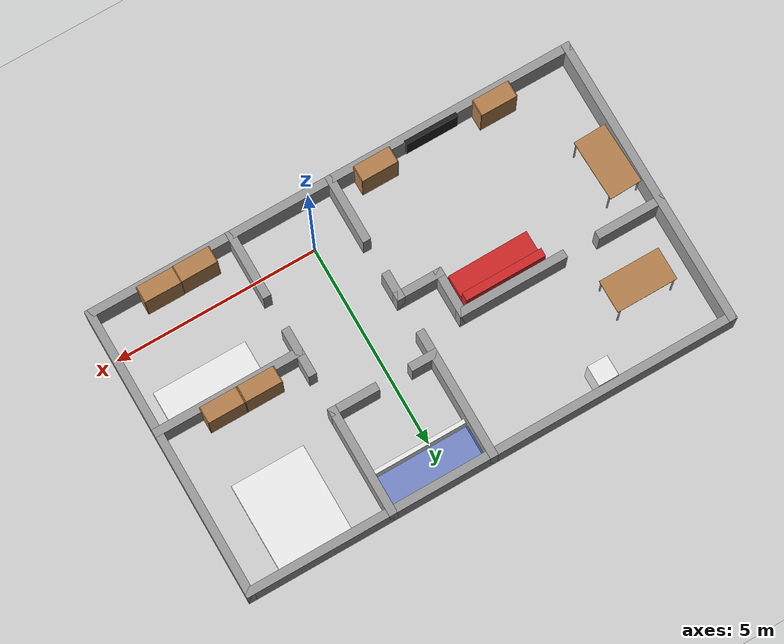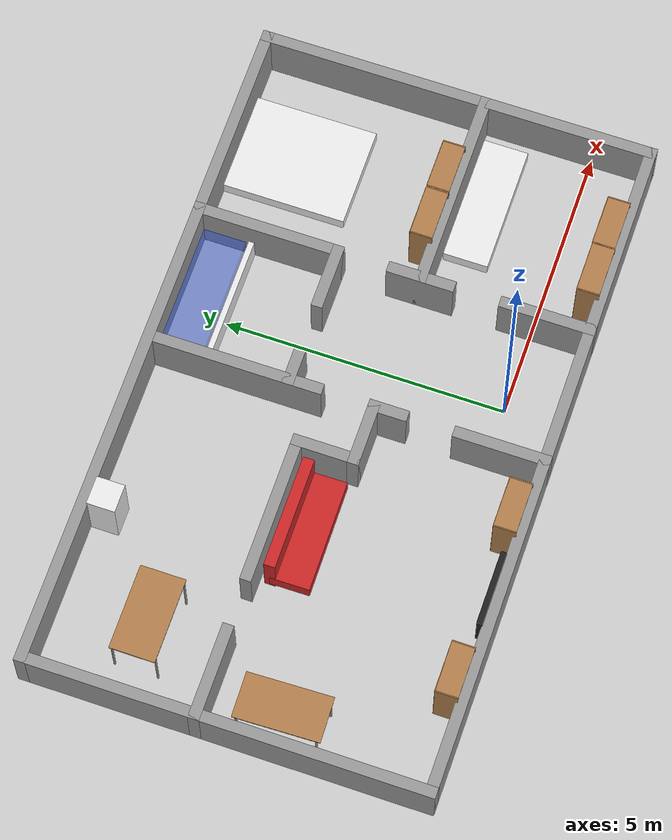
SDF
<sdf version="1.4">
 <world name="default">
  <light name="sun" type="directional">
   <pose>0 0 10 0 -0 0</pose>
   <diffuse>0.8 0.8 0.8 1</diffuse>
   <specular>0.2 0.2 0.2 1</specular>
   <attenuation>
    <range>1000</range>
    <constant>0.9</constant>
    <linear>0.01</linear>
    <quadratic>0.001</quadratic>
   </attenuation>
   <direction>-0.5 0.1 -0.9</direction>
  </light>
  <model name="ground_plane">
   <static>1</static>
   <link name="link">
    <collision name="collision">
     <geometry><plane><normal>0 0 1</normal><size>100 100</size></plane></geometry>
     <surface><friction><ode><mu>100</mu><mu2>50</mu2></ode></friction></surface>
    </collision>
    <visual name="visual">
     <cast_shadows>0</cast_shadows>
     <geometry><plane><normal>0 0 1</normal><size>100 100</size></plane></geometry>
     <material>
      <script><uri>file://media/materials/scripts/gazebo.material</uri><name>Gazebo/Grey</name></script>
     </material>
    </visual>
    <velocity_decay><linear>0</linear><angular>0</angular></velocity_decay>
   </link>
  </model>
  <physics type="ode">
   <max_step_size>0.01</max_step_size>
   <real_time_factor>1</real_time_factor>
   <real_time_update_rate>100</real_time_update_rate>
   <gravity>0 0 -9.8</gravity>
  </physics>
  <scene><ambient>0.4 0.4 0.4 1</ambient><background>0.7 0.7 0.7 1</background><shadows>1</shadows></scene>
  <spherical_coordinates>
   <surface_model>EARTH_WGS84</surface_model>
   <latitude_deg>0</latitude_deg>
   <longitude_deg>0</longitude_deg>
   <elevation>0</elevation>
   <heading_deg>0</heading_deg>
  </spherical_coordinates>
  <model name="BuildingDefaultName">
   <link name="Wall_27">
    <collision name="Wall_27_Collision">
     <geometry><box><size>12.2 0.2 1</size></box></geometry>
     <pose>0 0 0.5 0 -0 0</pose>
    </collision>
    <visual name="Wall_27_Visual">
     <pose>0 0 0.5 0 -0 0</pose>
     <geometry><box><size>12.2 0.2 1</size></box></geometry>
     <material>
      <script><uri>file://media/materials/scripts/gazebo.material</uri><name>Gazebo/Grey</name></script>
     </material>
    </visual>
    <velocity_decay><linear>0</linear><angular>0</angular></velocity_decay>
    <pose>-1 -1 0 0 -0 0</pose>
   </link>
   <link name="Wall_29">
    <collision name="Wall_29_Collision">
     <geometry><box><size>12.2 0.2 1</size></box></geometry>
     <pose>0 0 0.5 0 -0 0</pose>
    </collision>
    <visual name="Wall_29_Visual">
     <pose>0 0 0.5 0 -0 0</pose>
     <geometry><box><size>12.2 0.2 1</size></box></geometry>
     <material>
      <script><uri>file://media/materials/scripts/gazebo.material</uri><name>Gazebo/Grey</name></script>
     </material>
    </visual>
    <velocity_decay><linear>0</linear><angular>0</angular></velocity_decay>
    <pose>-1 6 0 0 -0 0</pose>
   </link>
   <link name="Wall_32">
    <collision name="Wall_32_Collision">
     <geometry><box><size>7.2 0.2 1</size></box></geometry>
     <pose>0 0 0.5 0 -0 0</pose>
    </collision>
    <visual name="Wall_32_Visual">
     <pose>0 0 0.5 0 -0 0</pose>
     <geometry><box><size>7.2 0.2 1</size></box></geometry>
     <material>
      <script><uri>file://media/materials/scripts/gazebo.material</uri><name>Gazebo/Grey</name></script>
     </material>
    </visual>
    <velocity_decay><linear>0</linear><angular>0</angular></velocity_decay>
    <pose>-7 2.5 0 0 0 -1.5708</pose>
   </link>
   <link name="Wall_35">
    <collision name="Wall_35_Collision">
     <geometry><box><size>7.2 0.2 1</size></box></geometry>
     <pose>0 0 0.5 0 -0 0</pose>
    </collision>
    <visual name="Wall_35_Visual">
     <pose>0 0 0.5 0 -0 0</pose>
     <geometry><box><size>7.2 0.2 1</size></box></geometry>
     <material>
      <script><uri>file://media/materials/scripts/gazebo.material</uri><name>Gazebo/Grey</name></script>
     </material>
    </visual>
    <velocity_decay><linear>0</linear><angular>0</angular></velocity_decay>
    <pose>5 2.5 0 0 0 -1.5708</pose>
   </link>
   <link name="Wall_37">
    <collision name="Wall_37_Collision">
     <geometry><box><size>1.7 0.2 1</size></box></geometry>
     <pose>0 0 0.5 0 -0 0</pose>
    </collision>
    <visual name="Wall_37_Visual">
     <pose>0 0 0.5 0 -0 0</pose>
     <geometry><box><size>1.7 0.2 1</size></box></geometry>
     <material>
      <script><uri>file://media/materials/scripts/gazebo.material</uri><name>Gazebo/Grey</name></script>
     </material>
    </visual>
    <velocity_decay><linear>0</linear><angular>0</angular></velocity_decay>
    <pose>-1 -0.25 0 0 -0 1.5708</pose>
   </link>
   <link name="Wall_39">
    <collision name="Wall_39_Collision">
     <geometry><box><size>1.7 0.2 1</size></box></geometry>
     <pose>0 0 0.5 0 -0 0</pose>
    </collision>
    <visual name="Wall_39_Visual">
     <pose>0 0 0.5 0 -0 0</pose>
     <geometry><box><size>1.7 0.2 1</size></box></geometry>
     <material>
      <script><uri>file://media/materials/scripts/gazebo.material</uri><name>Gazebo/Grey</name></script>
     </material>
    </visual>
    <velocity_decay><linear>0</linear><angular>0</angular></velocity_decay>
    <pose>1.5 -0.25 0 0 -0 1.5708</pose>
   </link>
   <link name="Wall_44">
    <collision name="Wall_44_Collision">
     <geometry><box><size>0.7 0.2 1</size></box></geometry>
     <pose>0 0 0.5 0 -0 0</pose>
    </collision>
    <visual name="Wall_44_Visual">
     <pose>0 0 0.5 0 -0 0</pose>
     <geometry><box><size>0.7 0.2 1</size></box></geometry>
     <material>
      <script><uri>file://media/materials/scripts/gazebo.material</uri><name>Gazebo/Grey</name></script>
     </material>
    </visual>
    <velocity_decay><linear>0</linear><angular>0</angular></velocity_decay>
    <pose>-1 1.75 0 0 -0 1.5708</pose>
   </link>
   <link name="Wall_46">
    <collision name="Wall_46_Collision">
     <geometry><box><size>1.2 0.2 1</size></box></geometry>
     <pose>0 0 0.5 0 -0 0</pose>
    </collision>
    <visual name="Wall_46_Visual">
     <pose>0 0 0.5 0 -0 0</pose>
     <geometry><box><size>1.2 0.2 1</size></box></geometry>
     <material>
      <script><uri>file://media/materials/scripts/gazebo.material</uri><name>Gazebo/Grey</name></script>
     </material>
    </visual>
    <velocity_decay><linear>0</linear><angular>0</angular></velocity_decay>
    <pose>-1.5 2 0 0 -0 0</pose>
   </link>
   <link name="Wall_48">
    <collision name="Wall_48_Collision">
     <geometry><box><size>1.2 0.2 1</size></box></geometry>
     <pose>0 0 0.5 0 -0 0</pose>
    </collision>
    <visual name="Wall_48_Visual">
     <pose>0 0 0.5 0 -0 0</pose>
     <geometry><box><size>1.2 0.2 1</size></box></geometry>
     <material>
      <script><uri>file://media/materials/scripts/gazebo.material</uri><name>Gazebo/Grey</name></script>
     </material>
    </visual>
    <velocity_decay><linear>0</linear><angular>0</angular></velocity_decay>
    <pose>-2 2.5 0 0 -0 1.5708</pose>
   </link>
   <link name="Wall_50">
    <collision name="Wall_50_Collision">
     <geometry><box><size>2.7 0.2 1</size></box></geometry>
     <pose>0 0 0.5 0 -0 0</pose>
    </collision>
    <visual name="Wall_50_Visual">
     <pose>0 0 0.5 0 -0 0</pose>
     <geometry><box><size>2.7 0.2 1</size></box></geometry>
     <material>
      <script><uri>file://media/materials/scripts/gazebo.material</uri><name>Gazebo/Grey</name></script>
     </material>
    </visual>
    <velocity_decay><linear>0</linear><angular>0</angular></velocity_decay>
    <pose>-3.25 3 0 0 -0 0</pose>
   </link>
   <link name="Wall_52">
    <collision name="Wall_52_Collision">
     <geometry><box><size>1.7 0.2 1</size></box></geometry>
     <pose>0 0 0.5 0 -0 0</pose>
    </collision>
    <visual name="Wall_52_Visual">
     <pose>0 0 0.5 0 -0 0</pose>
     <geometry><box><size>1.7 0.2 1</size></box></geometry>
     <material>
      <script><uri>file://media/materials/scripts/gazebo.material</uri><name>Gazebo/Grey</name></script>
     </material>
    </visual>
    <velocity_decay><linear>0</linear><angular>0</angular></velocity_decay>
    <pose>-6.25 3 0 0 -0 0</pose>
   </link>
   <link name="Wall_55">
    <collision name="Wall_55_Collision">
     <geometry><box><size>3.2 0.2 1</size></box></geometry>
     <pose>0 0 0.5 0 -0 0</pose>
    </collision>
    <visual name="Wall_55_Visual">
     <pose>0 0 0.5 0 -0 0</pose>
     <geometry><box><size>3.2 0.2 1</size></box></geometry>
     <material>
      <script><uri>file://media/materials/scripts/gazebo.material</uri><name>Gazebo/Grey</name></script>
     </material>
    </visual>
    <velocity_decay><linear>0</linear><angular>0</angular></velocity_decay>
    <pose>-1 4.5 0 0 0 -1.5708</pose>
   </link>
   <link name="Wall_57">
    <collision name="Wall_57_Collision">
     <geometry><box><size>3.7 0.2 1</size></box></geometry>
     <pose>0 0 0.5 0 -0 0</pose>
    </collision>
    <visual name="Wall_57_Visual">
     <pose>0 0 0.5 0 -0 0</pose>
     <geometry><box><size>3.7 0.2 1</size></box></geometry>
     <material>
      <script><uri>file://media/materials/scripts/gazebo.material</uri><name>Gazebo/Grey</name></script>
     </material>
    </visual>
    <velocity_decay><linear>0</linear><angular>0</angular></velocity_decay>
    <pose>3.25 2 0 0 -0 0</pose>
   </link>
   <link name="Wall_59">
    <collision name="Wall_59_Collision">
     <geometry><box><size>1.2 0.2 1</size></box></geometry>
     <pose>0 0 0.5 0 -0 0</pose>
    </collision>
    <visual name="Wall_59_Visual">
     <pose>0 0 0.5 0 -0 0</pose>
     <geometry><box><size>1.2 0.2 1</size></box></geometry>
     <material>
      <script><uri>file://media/materials/scripts/gazebo.material</uri><name>Gazebo/Grey</name></script>
     </material>
    </visual>
    <velocity_decay><linear>0</linear><angular>0</angular></velocity_decay>
    <pose>1.5 2 0 0 0 -1.5708</pose>
   </link>
   <link name="Wall_61">
    <collision name="Wall_61_Collision">
     <geometry><box><size>2.7 0.2 1</size></box></geometry>
     <pose>0 0 0.5 0 -0 0</pose>
    </collision>
    <visual name="Wall_61_Visual">
     <pose>0 0 0.5 0 -0 0</pose>
     <geometry><box><size>2.7 0.2 1</size></box></geometry>
     <material>
      <script><uri>file://media/materials/scripts/gazebo.material</uri><name>Gazebo/Grey</name></script>
     </material>
    </visual>
    <velocity_decay><linear>0</linear><angular>0</angular></velocity_decay>
    <pose>1.5 4.75 0 0 0 -1.5708</pose>
   </link>
   <link name="Wall_64">
    <collision name="Wall_64_Collision">
     <geometry><box><size>1.2 0.2 1</size></box></geometry>
     <pose>0 0 0.5 0 -0 0</pose>
    </collision>
    <visual name="Wall_64_Visual">
     <pose>0 0 0.5 0 -0 0</pose>
     <geometry><box><size>1.2 0.2 1</size></box></geometry>
     <material>
      <script><uri>file://media/materials/scripts/gazebo.material</uri><name>Gazebo/Grey</name></script>
     </material>
    </visual>
    <velocity_decay><linear>0</linear><angular>0</angular></velocity_decay>
    <pose>1 3.5 0 0 -0 0</pose>
   </link>
   <link name="Wall_66">
    <collision name="Wall_66_Collision">
     <geometry><box><size>0.7 0.2 1</size></box></geometry>
     <pose>0 0 0.5 0 -0 0</pose>
    </collision>
    <visual name="Wall_66_Visual">
     <pose>0 0 0.5 0 -0 0</pose>
     <geometry><box><size>0.7 0.2 1</size></box></geometry>
     <material>
      <script><uri>file://media/materials/scripts/gazebo.material</uri><name>Gazebo/Grey</name></script>
     </material>
    </visual>
    <velocity_decay><linear>0</linear><angular>0</angular></velocity_decay>
    <pose>-0.75 3.5 0 0 -0 0</pose>
   </link>
   <static>1</static>
  </model>
  <model name="table">
   <static>1</static>
   <link name="link">
    <collision name="surface">
     <pose>0 0 1 0 -0 0</pose>
     <geometry><box><size>1.5 0.8 0.03</size></box></geometry>
     <surface><friction><ode><mu>0.6</mu><mu2>0.6</mu2></ode></friction></surface>
    </collision>
    <visual name="visual1">
     <pose>0 0 1 0 -0 0</pose>
     <geometry><box><size>1.5 0.8 0.03</size></box></geometry>
     <material>
      <script><uri>file://media/materials/scripts/gazebo.material</uri><name>Gazebo/Wood</name></script>
     </material>
    </visual>
    <collision name="front_left_leg">
     <pose>0.68 0.38 0.5 0 -0 0</pose>
     <geometry><cylinder><radius>0.02</radius><length>1</length></cylinder></geometry>
    </collision>
    <visual name="front_left_leg">
     <pose>0.68 0.38 0.5 0 -0 0</pose>
     <geometry><cylinder><radius>0.02</radius><length>1</length></cylinder></geometry>
     <material>
      <script><uri>file://media/materials/scripts/gazebo.material</uri><name>Gazebo/Grey</name></script>
     </material>
    </visual>
    <collision name="front_right_leg">
     <pose>0.68 -0.38 0.5 0 -0 0</pose>
     <geometry><cylinder><radius>0.02</radius><length>1</length></cylinder></geometry>
    </collision>
    <visual name="front_right_leg">
     <pose>0.68 -0.38 0.5 0 -0 0</pose>
     <geometry><cylinder><radius>0.02</radius><length>1</length></cylinder></geometry>
     <material>
      <script><uri>file://media/materials/scripts/gazebo.material</uri><name>Gazebo/Grey</name></script>
     </material>
    </visual>
    <collision name="back_right_leg">
     <pose>-0.68 -0.38 0.5 0 -0 0</pose>
     <geometry><cylinder><radius>0.02</radius><length>1</length></cylinder></geometry>
    </collision>
    <visual name="back_right_leg">
     <pose>-0.68 -0.38 0.5 0 -0 0</pose>
     <geometry><cylinder><radius>0.02</radius><length>1</length></cylinder></geometry>
     <material>
      <script><uri>file://media/materials/scripts/gazebo.material</uri><name>Gazebo/Grey</name></script>
     </material>
    </visual>
    <collision name="back_left_leg">
     <pose>-0.68 0.38 0.5 0 -0 0</pose>
     <geometry><cylinder><radius>0.02</radius><length>1</length></cylinder></geometry>
    </collision>
    <visual name="back_left_leg">
     <pose>-0.68 0.38 0.5 0 -0 0</pose>
     <geometry><cylinder><radius>0.02</radius><length>1</length></cylinder></geometry>
     <material>
      <script><uri>file://media/materials/scripts/gazebo.material</uri><name>Gazebo/Grey</name></script>
     </material>
    </visual>
    <velocity_decay><linear>0</linear><angular>0</angular></velocity_decay>
   </link>
   <pose>-6.44255 1.69471 0 0 0 -1.53932</pose>
  </model>
  <model name="table_0">
   <static>1</static>
   <link name="link">
    <collision name="surface">
     <pose>0 0 1 0 -0 0</pose>
     <geometry><box><size>1.5 0.8 0.03</size></box></geometry>
     <surface><friction><ode><mu>0.6</mu><mu2>0.6</mu2></ode></friction></surface>
    </collision>
    <visual name="visual1">
     <pose>0 0 1 0 -0 0</pose>
     <geometry><box><size>1.5 0.8 0.03</size></box></geometry>
     <material>
      <script><uri>file://media/materials/scripts/gazebo.material</uri><name>Gazebo/Wood</name></script>
     </material>
    </visual>
    <collision name="front_left_leg">
     <pose>0.68 0.38 0.5 0 -0 0</pose>
     <geometry><cylinder><radius>0.02</radius><length>1</length></cylinder></geometry>
    </collision>
    <visual name="front_left_leg">
     <pose>0.68 0.38 0.5 0 -0 0</pose>
     <geometry><cylinder><radius>0.02</radius><length>1</length></cylinder></geometry>
     <material>
      <script><uri>file://media/materials/scripts/gazebo.material</uri><name>Gazebo/Grey</name></script>
     </material>
    </visual>
    <collision name="front_right_leg">
     <pose>0.68 -0.38 0.5 0 -0 0</pose>
     <geometry><cylinder><radius>0.02</radius><length>1</length></cylinder></geometry>
    </collision>
    <visual name="front_right_leg">
     <pose>0.68 -0.38 0.5 0 -0 0</pose>
     <geometry><cylinder><radius>0.02</radius><length>1</length></cylinder></geometry>
     <material>
      <script><uri>file://media/materials/scripts/gazebo.material</uri><name>Gazebo/Grey</name></script>
     </material>
    </visual>
    <collision name="back_right_leg">
     <pose>-0.68 -0.38 0.5 0 -0 0</pose>
     <geometry><cylinder><radius>0.02</radius><length>1</length></cylinder></geometry>
    </collision>
    <visual name="back_right_leg">
     <pose>-0.68 -0.38 0.5 0 -0 0</pose>
     <geometry><cylinder><radius>0.02</radius><length>1</length></cylinder></geometry>
     <material>
      <script><uri>file://media/materials/scripts/gazebo.material</uri><name>Gazebo/Grey</name></script>
     </material>
    </visual>
    <collision name="back_left_leg">
     <pose>-0.68 0.38 0.5 0 -0 0</pose>
     <geometry><cylinder><radius>0.02</radius><length>1</length></cylinder></geometry>
    </collision>
    <visual name="back_left_leg">
     <pose>-0.68 0.38 0.5 0 -0 0</pose>
     <geometry><cylinder><radius>0.02</radius><length>1</length></cylinder></geometry>
     <material>
      <script><uri>file://media/materials/scripts/gazebo.material</uri><name>Gazebo/Grey</name></script>
     </material>
    </visual>
    <velocity_decay><linear>0</linear><angular>0</angular></velocity_decay>
   </link>
   <pose>-5.66051 4.30495 0 0 -0 0</pose>
  </model>
  <model name="bookshelf_1">
   <static>1</static>
   <link name="link">
    <inertial><mass>1</mass></inertial>
    <collision name="back">
     <pose>0 0.005 0.6 0 -0 0</pose>
     <geometry><box><size>0.9 0.01 1.2</size></box></geometry>
    </collision>
    <visual name="visual1">
     <pose>0 0.005 0.6 0 -0 0</pose>
     <geometry><box><size>0.9 0.01 1.2</size></box></geometry>
     <material>
      <script><uri>file://media/materials/scripts/gazebo.material</uri><name>Gazebo/Wood</name></script>
     </material>
    </visual>
    <collision name="left_side">
     <pose>0.45 -0.195 0.6 0 -0 0</pose>
     <geometry><box><size>0.02 0.4 1.2</size></box></geometry>
    </collision>
    <visual name="visual2">
     <pose>0.45 -0.195 0.6 0 -0 0</pose>
     <geometry><box><size>0.02 0.4 1.2</size></box></geometry>
     <material>
      <script><uri>file://media/materials/scripts/gazebo.material</uri><name>Gazebo/Wood</name></script>
     </material>
    </visual>
    <collision name="right_side">
     <pose>-0.45 -0.195 0.6 0 -0 0</pose>
     <geometry><box><size>0.02 0.4 1.2</size></box></geometry>
    </collision>
    <visual name="visual3">
     <pose>-0.45 -0.195 0.6 0 -0 0</pose>
     <geometry><box><size>0.02 0.4 1.2</size></box></geometry>
     <material>
      <script><uri>file://media/materials/scripts/gazebo.material</uri><name>Gazebo/Wood</name></script>
     </material>
    </visual>
    <collision name="bottom">
     <pose>0 -0.195 0.03 0 -0 0</pose>
     <geometry><box><size>0.88 0.4 0.06</size></box></geometry>
    </collision>
    <visual name="visual4">
     <pose>0 -0.195 0.03 0 -0 0</pose>
     <geometry><box><size>0.88 0.4 0.06</size></box></geometry>
     <material>
      <script><uri>file://media/materials/scripts/gazebo.material</uri><name>Gazebo/Wood</name></script>
     </material>
    </visual>
    <collision name="top">
     <pose>0 -0.195 1.19 0 -0 0</pose>
     <geometry><box><size>0.88 0.4 0.02</size></box></geometry>
    </collision>
    <visual name="visual5">
     <pose>0 -0.195 1.19 0 -0 0</pose>
     <geometry><box><size>0.88 0.4 0.02</size></box></geometry>
     <material>
      <script><uri>file://media/materials/scripts/gazebo.material</uri><name>Gazebo/Wood</name></script>
     </material>
    </visual>
    <collision name="low_shelf">
     <pose>0 -0.195 0.43 0 -0 0</pose>
     <geometry><box><size>0.88 0.4 0.02</size></box></geometry>
    </collision>
    <visual name="visual6">
     <pose>0 -0.195 0.43 0 -0 0</pose>
     <geometry><box><size>0.88 0.4 0.02</size></box></geometry>
     <material>
      <script><uri>file://media/materials/scripts/gazebo.material</uri><name>Gazebo/Wood</name></script>
     </material>
    </visual>
    <collision name="high_shelf">
     <pose>0 -0.195 0.8 0 -0 0</pose>
     <geometry><box><size>0.88 0.4 0.02</size></box></geometry>
    </collision>
    <visual name="visual7">
     <pose>0 -0.195 0.8 0 -0 0</pose>
     <geometry><box><size>0.88 0.4 0.02</size></box></geometry>
     <material>
      <script><uri>file://media/materials/scripts/gazebo.material</uri><name>Gazebo/Wood</name></script>
     </material>
    </visual>
    <velocity_decay><linear>0</linear><angular>0</angular></velocity_decay>
   </link>
   <pose>-2 -0.560335 0 0 -0 0</pose>
  </model>
  <model name="bookshelf_3">
   <static>1</static>
   <link name="link">
    <inertial><mass>1</mass></inertial>
    <collision name="back">
     <pose>0 0.005 0.6 0 -0 0</pose>
     <geometry><box><size>0.9 0.01 1.2</size></box></geometry>
    </collision>
    <visual name="visual1">
     <pose>0 0.005 0.6 0 -0 0</pose>
     <geometry><box><size>0.9 0.01 1.2</size></box></geometry>
     <material>
      <script><uri>file://media/materials/scripts/gazebo.material</uri><name>Gazebo/Wood</name></script>
     </material>
    </visual>
    <collision name="left_side">
     <pose>0.45 -0.195 0.6 0 -0 0</pose>
     <geometry><box><size>0.02 0.4 1.2</size></box></geometry>
    </collision>
    <visual name="visual2">
     <pose>0.45 -0.195 0.6 0 -0 0</pose>
     <geometry><box><size>0.02 0.4 1.2</size></box></geometry>
     <material>
      <script><uri>file://media/materials/scripts/gazebo.material</uri><name>Gazebo/Wood</name></script>
     </material>
    </visual>
    <collision name="right_side">
     <pose>-0.45 -0.195 0.6 0 -0 0</pose>
     <geometry><box><size>0.02 0.4 1.2</size></box></geometry>
    </collision>
    <visual name="visual3">
     <pose>-0.45 -0.195 0.6 0 -0 0</pose>
     <geometry><box><size>0.02 0.4 1.2</size></box></geometry>
     <material>
      <script><uri>file://media/materials/scripts/gazebo.material</uri><name>Gazebo/Wood</name></script>
     </material>
    </visual>
    <collision name="bottom">
     <pose>0 -0.195 0.03 0 -0 0</pose>
     <geometry><box><size>0.88 0.4 0.06</size></box></geometry>
    </collision>
    <visual name="visual4">
     <pose>0 -0.195 0.03 0 -0 0</pose>
     <geometry><box><size>0.88 0.4 0.06</size></box></geometry>
     <material>
      <script><uri>file://media/materials/scripts/gazebo.material</uri><name>Gazebo/Wood</name></script>
     </material>
    </visual>
    <collision name="top">
     <pose>0 -0.195 1.19 0 -0 0</pose>
     <geometry><box><size>0.88 0.4 0.02</size></box></geometry>
    </collision>
    <visual name="visual5">
     <pose>0 -0.195 1.19 0 -0 0</pose>
     <geometry><box><size>0.88 0.4 0.02</size></box></geometry>
     <material>
      <script><uri>file://media/materials/scripts/gazebo.material</uri><name>Gazebo/Wood</name></script>
     </material>
    </visual>
    <collision name="low_shelf">
     <pose>0 -0.195 0.43 0 -0 0</pose>
     <geometry><box><size>0.88 0.4 0.02</size></box></geometry>
    </collision>
    <visual name="visual6">
     <pose>0 -0.195 0.43 0 -0 0</pose>
     <geometry><box><size>0.88 0.4 0.02</size></box></geometry>
     <material>
      <script><uri>file://media/materials/scripts/gazebo.material</uri><name>Gazebo/Wood</name></script>
     </material>
    </visual>
    <collision name="high_shelf">
     <pose>0 -0.195 0.8 0 -0 0</pose>
     <geometry><box><size>0.88 0.4 0.02</size></box></geometry>
    </collision>
    <visual name="visual7">
     <pose>0 -0.195 0.8 0 -0 0</pose>
     <geometry><box><size>0.88 0.4 0.02</size></box></geometry>
     <material>
      <script><uri>file://media/materials/scripts/gazebo.material</uri><name>Gazebo/Wood</name></script>
     </material>
    </visual>
    <velocity_decay><linear>0</linear><angular>0</angular></velocity_decay>
   </link>
   <pose>-5 -0.544478 0 0 -0 0</pose>
  </model>
  <model name="bookshelf_4">
   <static>1</static>
   <link name="link">
    <inertial><mass>1</mass></inertial>
    <collision name="back">
     <pose>0 0.005 0.6 0 -0 0</pose>
     <geometry><box><size>0.9 0.01 1.2</size></box></geometry>
    </collision>
    <visual name="visual1">
     <pose>0 0.005 0.6 0 -0 0</pose>
     <geometry><box><size>0.9 0.01 1.2</size></box></geometry>
     <material>
      <script><uri>file://media/materials/scripts/gazebo.material</uri><name>Gazebo/Wood</name></script>
     </material>
    </visual>
    <collision name="left_side">
     <pose>0.45 -0.195 0.6 0 -0 0</pose>
     <geometry><box><size>0.02 0.4 1.2</size></box></geometry>
    </collision>
    <visual name="visual2">
     <pose>0.45 -0.195 0.6 0 -0 0</pose>
     <geometry><box><size>0.02 0.4 1.2</size></box></geometry>
     <material>
      <script><uri>file://media/materials/scripts/gazebo.material</uri><name>Gazebo/Wood</name></script>
     </material>
    </visual>
    <collision name="right_side">
     <pose>-0.45 -0.195 0.6 0 -0 0</pose>
     <geometry><box><size>0.02 0.4 1.2</size></box></geometry>
    </collision>
    <visual name="visual3">
     <pose>-0.45 -0.195 0.6 0 -0 0</pose>
     <geometry><box><size>0.02 0.4 1.2</size></box></geometry>
     <material>
      <script><uri>file://media/materials/scripts/gazebo.material</uri><name>Gazebo/Wood</name></script>
     </material>
    </visual>
    <collision name="bottom">
     <pose>0 -0.195 0.03 0 -0 0</pose>
     <geometry><box><size>0.88 0.4 0.06</size></box></geometry>
    </collision>
    <visual name="visual4">
     <pose>0 -0.195 0.03 0 -0 0</pose>
     <geometry><box><size>0.88 0.4 0.06</size></box></geometry>
     <material>
      <script><uri>file://media/materials/scripts/gazebo.material</uri><name>Gazebo/Wood</name></script>
     </material>
    </visual>
    <collision name="top">
     <pose>0 -0.195 1.19 0 -0 0</pose>
     <geometry><box><size>0.88 0.4 0.02</size></box></geometry>
    </collision>
    <visual name="visual5">
     <pose>0 -0.195 1.19 0 -0 0</pose>
     <geometry><box><size>0.88 0.4 0.02</size></box></geometry>
     <material>
      <script><uri>file://media/materials/scripts/gazebo.material</uri><name>Gazebo/Wood</name></script>
     </material>
    </visual>
    <collision name="low_shelf">
     <pose>0 -0.195 0.43 0 -0 0</pose>
     <geometry><box><size>0.88 0.4 0.02</size></box></geometry>
    </collision>
    <visual name="visual6">
     <pose>0 -0.195 0.43 0 -0 0</pose>
     <geometry><box><size>0.88 0.4 0.02</size></box></geometry>
     <material>
      <script><uri>file://media/materials/scripts/gazebo.material</uri><name>Gazebo/Wood</name></script>
     </material>
    </visual>
    <collision name="high_shelf">
     <pose>0 -0.195 0.8 0 -0 0</pose>
     <geometry><box><size>0.88 0.4 0.02</size></box></geometry>
    </collision>
    <visual name="visual7">
     <pose>0 -0.195 0.8 0 -0 0</pose>
     <geometry><box><size>0.88 0.4 0.02</size></box></geometry>
     <material>
      <script><uri>file://media/materials/scripts/gazebo.material</uri><name>Gazebo/Wood</name></script>
     </material>
    </visual>
    <velocity_decay><linear>0</linear><angular>0</angular></velocity_decay>
   </link>
   <pose>2.50793 -0.579635 0 0 -0 0</pose>
  </model>
  <model name="bookshelf_5">
   <static>1</static>
   <link name="link">
    <inertial><mass>1</mass></inertial>
    <collision name="back">
     <pose>0 0.005 0.6 0 -0 0</pose>
     <geometry><box><size>0.9 0.01 1.2</size></box></geometry>
    </collision>
    <visual name="visual1">
     <pose>0 0.005 0.6 0 -0 0</pose>
     <geometry><box><size>0.9 0.01 1.2</size></box></geometry>
     <material>
      <script><uri>file://media/materials/scripts/gazebo.material</uri><name>Gazebo/Wood</name></script>
     </material>
    </visual>
    <collision name="left_side">
     <pose>0.45 -0.195 0.6 0 -0 0</pose>
     <geometry><box><size>0.02 0.4 1.2</size></box></geometry>
    </collision>
    <visual name="visual2">
     <pose>0.45 -0.195 0.6 0 -0 0</pose>
     <geometry><box><size>0.02 0.4 1.2</size></box></geometry>
     <material>
      <script><uri>file://media/materials/scripts/gazebo.material</uri><name>Gazebo/Wood</name></script>
     </material>
    </visual>
    <collision name="right_side">
     <pose>-0.45 -0.195 0.6 0 -0 0</pose>
     <geometry><box><size>0.02 0.4 1.2</size></box></geometry>
    </collision>
    <visual name="visual3">
     <pose>-0.45 -0.195 0.6 0 -0 0</pose>
     <geometry><box><size>0.02 0.4 1.2</size></box></geometry>
     <material>
      <script><uri>file://media/materials/scripts/gazebo.material</uri><name>Gazebo/Wood</name></script>
     </material>
    </visual>
    <collision name="bottom">
     <pose>0 -0.195 0.03 0 -0 0</pose>
     <geometry><box><size>0.88 0.4 0.06</size></box></geometry>
    </collision>
    <visual name="visual4">
     <pose>0 -0.195 0.03 0 -0 0</pose>
     <geometry><box><size>0.88 0.4 0.06</size></box></geometry>
     <material>
      <script><uri>file://media/materials/scripts/gazebo.material</uri><name>Gazebo/Wood</name></script>
     </material>
    </visual>
    <collision name="top">
     <pose>0 -0.195 1.19 0 -0 0</pose>
     <geometry><box><size>0.88 0.4 0.02</size></box></geometry>
    </collision>
    <visual name="visual5">
     <pose>0 -0.195 1.19 0 -0 0</pose>
     <geometry><box><size>0.88 0.4 0.02</size></box></geometry>
     <material>
      <script><uri>file://media/materials/scripts/gazebo.material</uri><name>Gazebo/Wood</name></script>
     </material>
    </visual>
    <collision name="low_shelf">
     <pose>0 -0.195 0.43 0 -0 0</pose>
     <geometry><box><size>0.88 0.4 0.02</size></box></geometry>
    </collision>
    <visual name="visual6">
     <pose>0 -0.195 0.43 0 -0 0</pose>
     <geometry><box><size>0.88 0.4 0.02</size></box></geometry>
     <material>
      <script><uri>file://media/materials/scripts/gazebo.material</uri><name>Gazebo/Wood</name></script>
     </material>
    </visual>
    <collision name="high_shelf">
     <pose>0 -0.195 0.8 0 -0 0</pose>
     <geometry><box><size>0.88 0.4 0.02</size></box></geometry>
    </collision>
    <visual name="visual7">
     <pose>0 -0.195 0.8 0 -0 0</pose>
     <geometry><box><size>0.88 0.4 0.02</size></box></geometry>
     <material>
      <script><uri>file://media/materials/scripts/gazebo.material</uri><name>Gazebo/Wood</name></script>
     </material>
    </visual>
    <velocity_decay><linear>0</linear><angular>0</angular></velocity_decay>
   </link>
   <pose>3.41344 -0.572419 0 0 -0 0</pose>
  </model>
  <model name="bookshelf_6">
   <static>1</static>
   <link name="link">
    <inertial><mass>1</mass></inertial>
    <collision name="back">
     <pose>0 0.005 0.6 0 -0 0</pose>
     <geometry><box><size>0.9 0.01 1.2</size></box></geometry>
    </collision>
    <visual name="visual1">
     <pose>0 0.005 0.6 0 -0 0</pose>
     <geometry><box><size>0.9 0.01 1.2</size></box></geometry>
     <material>
      <script><uri>file://media/materials/scripts/gazebo.material</uri><name>Gazebo/Wood</name></script>
     </material>
    </visual>
    <collision name="left_side">
     <pose>0.45 -0.195 0.6 0 -0 0</pose>
     <geometry><box><size>0.02 0.4 1.2</size></box></geometry>
    </collision>
    <visual name="visual2">
     <pose>0.45 -0.195 0.6 0 -0 0</pose>
     <geometry><box><size>0.02 0.4 1.2</size></box></geometry>
     <material>
      <script><uri>file://media/materials/scripts/gazebo.material</uri><name>Gazebo/Wood</name></script>
     </material>
    </visual>
    <collision name="right_side">
     <pose>-0.45 -0.195 0.6 0 -0 0</pose>
     <geometry><box><size>0.02 0.4 1.2</size></box></geometry>
    </collision>
    <visual name="visual3">
     <pose>-0.45 -0.195 0.6 0 -0 0</pose>
     <geometry><box><size>0.02 0.4 1.2</size></box></geometry>
     <material>
      <script><uri>file://media/materials/scripts/gazebo.material</uri><name>Gazebo/Wood</name></script>
     </material>
    </visual>
    <collision name="bottom">
     <pose>0 -0.195 0.03 0 -0 0</pose>
     <geometry><box><size>0.88 0.4 0.06</size></box></geometry>
    </collision>
    <visual name="visual4">
     <pose>0 -0.195 0.03 0 -0 0</pose>
     <geometry><box><size>0.88 0.4 0.06</size></box></geometry>
     <material>
      <script><uri>file://media/materials/scripts/gazebo.material</uri><name>Gazebo/Wood</name></script>
     </material>
    </visual>
    <collision name="top">
     <pose>0 -0.195 1.19 0 -0 0</pose>
     <geometry><box><size>0.88 0.4 0.02</size></box></geometry>
    </collision>
    <visual name="visual5">
     <pose>0 -0.195 1.19 0 -0 0</pose>
     <geometry><box><size>0.88 0.4 0.02</size></box></geometry>
     <material>
      <script><uri>file://media/materials/scripts/gazebo.material</uri><name>Gazebo/Wood</name></script>
     </material>
    </visual>
    <collision name="low_shelf">
     <pose>0 -0.195 0.43 0 -0 0</pose>
     <geometry><box><size>0.88 0.4 0.02</size></box></geometry>
    </collision>
    <visual name="visual6">
     <pose>0 -0.195 0.43 0 -0 0</pose>
     <geometry><box><size>0.88 0.4 0.02</size></box></geometry>
     <material>
      <script><uri>file://media/materials/scripts/gazebo.material</uri><name>Gazebo/Wood</name></script>
     </material>
    </visual>
    <collision name="high_shelf">
     <pose>0 -0.195 0.8 0 -0 0</pose>
     <geometry><box><size>0.88 0.4 0.02</size></box></geometry>
    </collision>
    <visual name="visual7">
     <pose>0 -0.195 0.8 0 -0 0</pose>
     <geometry><box><size>0.88 0.4 0.02</size></box></geometry>
     <material>
      <script><uri>file://media/materials/scripts/gazebo.material</uri><name>Gazebo/Wood</name></script>
     </material>
    </visual>
    <velocity_decay><linear>0</linear><angular>0</angular></velocity_decay>
   </link>
   <pose>2.59763 2.42009 0 0 -0 0</pose>
  </model>
  <model name="bookshelf_7">
   <static>1</static>
   <link name="link">
    <inertial><mass>1</mass></inertial>
    <collision name="back">
     <pose>0 0.005 0.6 0 -0 0</pose>
     <geometry><box><size>0.9 0.01 1.2</size></box></geometry>
    </collision>
    <visual name="visual1">
     <pose>0 0.005 0.6 0 -0 0</pose>
     <geometry><box><size>0.9 0.01 1.2</size></box></geometry>
     <material>
      <script><uri>file://media/materials/scripts/gazebo.material</uri><name>Gazebo/Wood</name></script>
     </material>
    </visual>
    <collision name="left_side">
     <pose>0.45 -0.195 0.6 0 -0 0</pose>
     <geometry><box><size>0.02 0.4 1.2</size></box></geometry>
    </collision>
    <visual name="visual2">
     <pose>0.45 -0.195 0.6 0 -0 0</pose>
     <geometry><box><size>0.02 0.4 1.2</size></box></geometry>
     <material>
      <script><uri>file://media/materials/scripts/gazebo.material</uri><name>Gazebo/Wood</name></script>
     </material>
    </visual>
    <collision name="right_side">
     <pose>-0.45 -0.195 0.6 0 -0 0</pose>
     <geometry><box><size>0.02 0.4 1.2</size></box></geometry>
    </collision>
    <visual name="visual3">
     <pose>-0.45 -0.195 0.6 0 -0 0</pose>
     <geometry><box><size>0.02 0.4 1.2</size></box></geometry>
     <material>
      <script><uri>file://media/materials/scripts/gazebo.material</uri><name>Gazebo/Wood</name></script>
     </material>
    </visual>
    <collision name="bottom">
     <pose>0 -0.195 0.03 0 -0 0</pose>
     <geometry><box><size>0.88 0.4 0.06</size></box></geometry>
    </collision>
    <visual name="visual4">
     <pose>0 -0.195 0.03 0 -0 0</pose>
     <geometry><box><size>0.88 0.4 0.06</size></box></geometry>
     <material>
      <script><uri>file://media/materials/scripts/gazebo.material</uri><name>Gazebo/Wood</name></script>
     </material>
    </visual>
    <collision name="top">
     <pose>0 -0.195 1.19 0 -0 0</pose>
     <geometry><box><size>0.88 0.4 0.02</size></box></geometry>
    </collision>
    <visual name="visual5">
     <pose>0 -0.195 1.19 0 -0 0</pose>
     <geometry><box><size>0.88 0.4 0.02</size></box></geometry>
     <material>
      <script><uri>file://media/materials/scripts/gazebo.material</uri><name>Gazebo/Wood</name></script>
     </material>
    </visual>
    <collision name="low_shelf">
     <pose>0 -0.195 0.43 0 -0 0</pose>
     <geometry><box><size>0.88 0.4 0.02</size></box></geometry>
    </collision>
    <visual name="visual6">
     <pose>0 -0.195 0.43 0 -0 0</pose>
     <geometry><box><size>0.88 0.4 0.02</size></box></geometry>
     <material>
      <script><uri>file://media/materials/scripts/gazebo.material</uri><name>Gazebo/Wood</name></script>
     </material>
    </visual>
    <collision name="high_shelf">
     <pose>0 -0.195 0.8 0 -0 0</pose>
     <geometry><box><size>0.88 0.4 0.02</size></box></geometry>
    </collision>
    <visual name="visual7">
     <pose>0 -0.195 0.8 0 -0 0</pose>
     <geometry><box><size>0.88 0.4 0.02</size></box></geometry>
     <material>
      <script><uri>file://media/materials/scripts/gazebo.material</uri><name>Gazebo/Wood</name></script>
     </material>
    </visual>
    <velocity_decay><linear>0</linear><angular>0</angular></velocity_decay>
   </link>
   <pose>3.51933 2.42166 0 0 -0 0</pose>
  </model>
  <model name="unit_box_1">
   <pose>3.28553 4.85173 0.111623 0 -0 0.000754</pose>
   <link name="link">
    <inertial>
     <mass>1</mass>
     <inertia><ixx>1</ixx><ixy>0</ixy><ixz>0</ixz><iyy>1</iyy><iyz>0</iyz><izz>1</izz></inertia>
    </inertial>
    <collision name="collision"><geometry><box><size>1.8 2.3 0.25</size></box></geometry></collision>
    <visual name="visual">
     <geometry><box><size>1.8 2.3 0.25</size></box></geometry>
     <material>
      <script><uri>file://media/materials/scripts/gazebo.material</uri><name>Gazebo/White</name></script>
     </material>
    </visual>
    <velocity_decay><linear>0</linear><angular>0</angular></velocity_decay>
   </link>
   <static>1</static>
  </model>
  <model name="unit_box_3">
   <pose>3.50676 1.47084 0.156119 0 -0 1e-05</pose>
   <link name="link">
    <inertial>
     <mass>1</mass>
     <inertia><ixx>1</ixx><ixy>0</ixy><ixz>0</ixz><iyy>1</iyy><iyz>0</iyz><izz>1</izz></inertia>
    </inertial>
    <collision name="collision"><geometry><box><size>2.3 0.8 0.25</size></box></geometry></collision>
    <visual name="visual">
     <geometry><box><size>2.3 0.8 0.25</size></box></geometry>
     <material>
      <script><uri>file://media/materials/scripts/gazebo.material</uri><name>Gazebo/White</name></script>
     </material>
    </visual>
    <velocity_decay><linear>0</linear><angular>0</angular></velocity_decay>
   </link>
   <static>1</static>
  </model>
  <model name="unit_box_5">
   <pose>-3.21615 2.38779 0.204015 0 -0 0.010186</pose>
   <link name="link">
    <inertial>
     <mass>1</mass>
     <inertia><ixx>1</ixx><ixy>0</ixy><ixz>0</ixz><iyy>1</iyy><iyz>0</iyz><izz>1</izz></inertia>
    </inertial>
    <collision name="collision"><geometry><box><size>2 0.7 0.3</size></box></geometry></collision>
    <visual name="visual">
     <geometry><box><size>2 0.7 0.3</size></box></geometry>
     <material>
      <script><uri>file://media/materials/scripts/gazebo.material</uri><name>Gazebo/Red</name></script>
     </material>
    </visual>
    <velocity_decay><linear>0</linear><angular>0</angular></velocity_decay>
   </link>
   <static>1</static>
  </model>
  <model name="unit_box_6">
   <pose>-3.21375 2.72458 0.413665 0.002947 -0.000113 0.002552</pose>
   <link name="link">
    <inertial>
     <mass>1</mass>
     <inertia><ixx>1</ixx><ixy>0</ixy><ixz>0</ixz><iyy>1</iyy><iyz>0</iyz><izz>1</izz></inertia>
    </inertial>
    <collision name="collision"><geometry><box><size>2 0.2 1</size></box></geometry></collision>
    <visual name="visual">
     <geometry><box><size>2 0.2 1</size></box></geometry>
     <material>
      <script><uri>file://media/materials/scripts/gazebo.material</uri><name>Gazebo/Red</name></script>
     </material>
    </visual>
    <velocity_decay><linear>0</linear><angular>0</angular></velocity_decay>
   </link>
   <static>1</static>
  </model>
  <model name="unit_box_1_0">
   <pose>-3.456 -0.862499 0.719533 -3.7e-05 2e-06 -5.3e-05</pose>
   <link name="link">
    <inertial>
     <mass>1</mass>
     <inertia><ixx>1</ixx><ixy>0</ixy><ixz>0</ixz><iyy>1</iyy><iyz>0</iyz><izz>1</izz></inertia>
    </inertial>
    <collision name="collision"><geometry><box><size>1.3 0.1 0.8</size></box></geometry></collision>
    <visual name="visual">
     <geometry><box><size>1.3 0.1 0.8</size></box></geometry>
     <material>
      <script><uri>file://media/materials/scripts/gazebo.material</uri><name>Gazebo/Black</name></script>
     </material>
    </visual>
    <velocity_decay><linear>0</linear><angular>0</angular></velocity_decay>
    <gravity>0</gravity>
   </link>
   <static>1</static>
  </model>
  <model name="unit_box_1_1">
   <pose>0.200077 5.53893 0.201281 -0.003458 0.000266 4.7e-05</pose>
   <link name="link">
    <inertial>
     <mass>1</mass>
     <inertia><ixx>1</ixx><ixy>0</ixy><ixz>0</ixz><iyy>1</iyy><iyz>0</iyz><izz>1</izz></inertia>
    </inertial>
    <collision name="collision"><geometry><box><size>2.4 0.5 0.4</size></box></geometry></collision>
    <visual name="visual">
     <geometry><box><size>2.5 0.8 0.4</size></box></geometry>
     <material>
      <script><uri>file://media/materials/scripts/gazebo.material</uri><name>Gazebo/BlueTransparent</name></script>
     </material>
    </visual>
    <velocity_decay><linear>0</linear><angular>0</angular></velocity_decay>
   </link>
   <static>0</static>
  </model>
  <model name="unit_box_2">
   <pose>-3.96389 5.65932 0.5 0 -0 0</pose>
   <link name="link">
    <inertial>
     <mass>1</mass>
     <inertia><ixx>1</ixx><ixy>0</ixy><ixz>0</ixz><iyy>1</iyy><iyz>0</iyz><izz>1</izz></inertia>
    </inertial>
    <collision name="collision"><geometry><box><size>0.5 0.5 1.2</size></box></geometry></collision>
    <visual name="visual">
     <geometry><box><size>0.5 0.5 1.2</size></box></geometry>
     <material>
      <script><uri>file://media/materials/scripts/gazebo.material</uri><name>Gazebo/White</name></script>
     </material>
    </visual>
    <velocity_decay><linear>0</linear><angular>0</angular></velocity_decay>
   </link>
   <static>1</static>
  </model>
  <model name="unit_box_1_2">
   <pose>0.268664 5.02854 0.230653 0 -0 0</pose>
   <link name="link">
    <inertial>
     <mass>1</mass>
     <inertia><ixx>1</ixx><ixy>0</ixy><ixz>0</ixz><iyy>1</iyy><iyz>0</iyz><izz>1</izz></inertia>
    </inertial>
    <collision name="collision"><geometry><box><size>2 0.1 0.5</size></box></geometry></collision>
    <visual name="visual">
     <geometry><box><size>2.5 0.1 0.5</size></box></geometry>
     <material>
      <script><uri>file://media/materials/scripts/gazebo.material</uri><name>Gazebo/White</name></script>
     </material>
    </visual>
    <velocity_decay><linear>0</linear><angular>0</angular></velocity_decay>
   </link>
   <static>1</static>
  </model>
  <model name="unit_cylinder_1">
   <static>1</static>
   <pose>-5.5 4.5 0.3 0 -0 0</pose>
   <link name="link">
    <inertial>
     <mass>1</mass>
     <inertia><ixx>1</ixx><ixy>0</ixy><ixz>0</ixz><iyy>1</iyy><iyz>0</iyz><izz>1</izz></inertia>
    </inertial>
    <collision name="collision">
     <geometry><cylinder><radius>0.05</radius><length>0.2</length></cylinder></geometry>
    </collision>
    <visual name="visual">
     <geometry><cylinder><radius>0.05</radius><length>0.2</length></cylinder></geometry>
     <material>
      <script><uri>file://media/materials/scripts/gazebo.material</uri><name>Gazebo/Green</name></script>
     </material>
    </visual>
    <velocity_decay><linear>0</linear><angular>0</angular></velocity_decay>
   </link>
   <static>0</static>
  </model>
 </world>
</sdf>
